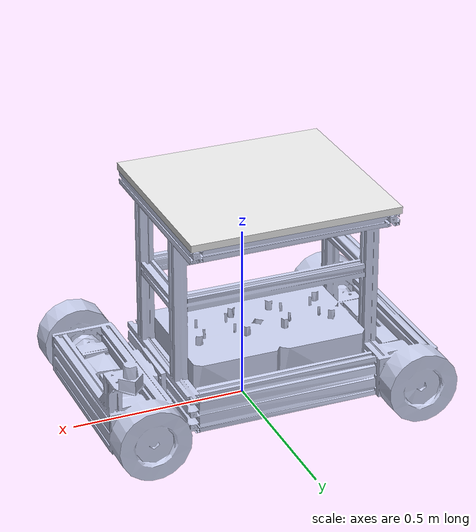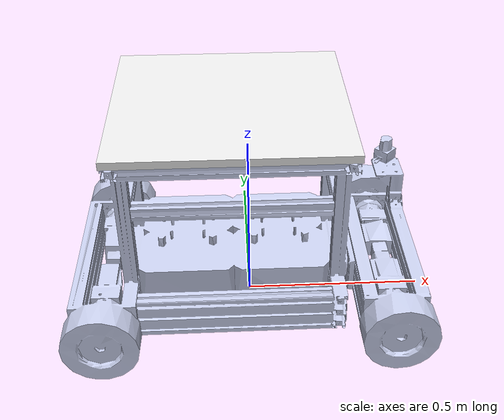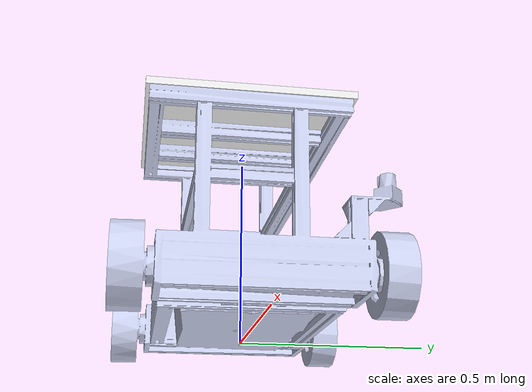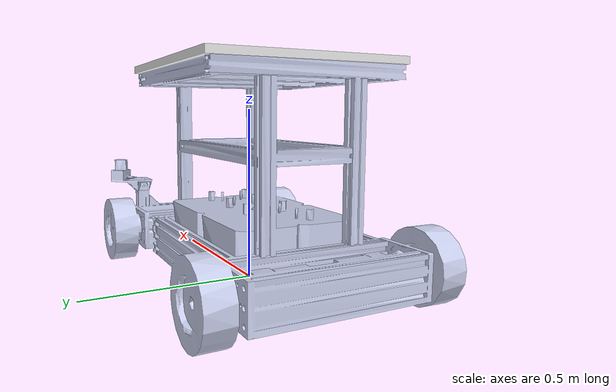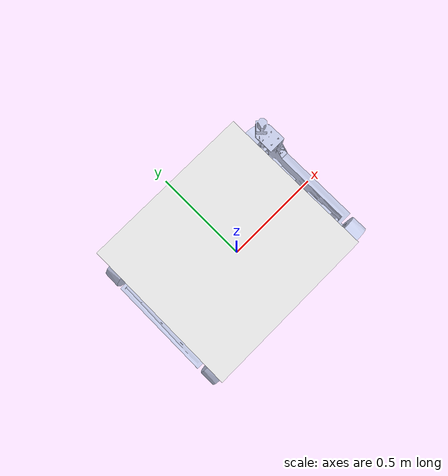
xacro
<robot name="base">

    <!-- Definition of base_footprint -> base_link -->

    <link name="base_footprint">
        <inertial>
            <origin xyz="0.0 0.0 0.0" rpy="0.0 0.0 0.0"/>
            <mass value="1E-4"/>
            <inertia ixx="1E-4" ixy="0.0" ixz="0.0" iyy="1E-4" iyz="0.0" izz="1E-4"/>
        </inertial>
        <visual>
            <origin rpy="0 0 0" xyz="0 0 0"/>
            <geometry>
                <box size="0.01 0.01 0.01"/>
            </geometry>
            <material name="White"/>
        </visual>
        <collision>
            <origin rpy="0 0 0" xyz="0 0 0"/>
            <geometry>
                <box size="0.01 0.01 0.01"/>
            </geometry>
        </collision>
    </link>

    <!-- JOINT to define base_footprint -->
    <joint name="base_footprint_joint" type="fixed">
        <origin xyz="0.25525 0.225 0.1616" rpy="0 0 0" />
        <parent link="base_footprint" />
        <child link="base_link" />
    </joint>

    <link name="base_link">
        <inertial>
        <origin
            xyz="-0.257082749974343 -0.227847593519202 0.0535404411050965"
            rpy="0 0 0" />
        <mass
            value="70.0210745907357" />
        <inertia
            ixx="9.06122735721955"
            ixy="0.0933988942518672"
            ixz="0.665662584048376"
            iyy="12.5350462868938"
            iyz="0.00262520723302998"
            izz="7.44839974564544" />
        </inertial>
        <visual>
        <origin
            xyz="0 0 0"
            rpy="0 0 0" />
        <geometry>
            <mesh
            filename="package://iai_donbot_sandbox_description/meshes/iai_boxy_base_2/base.stl" />
        </geometry>
        <material
            name="">
            <color
            rgba="0.792156862745098 0.819607843137255 0.933333333333333 1" />
        </material>
        </visual>
        <collision>
        <origin
            xyz="0 0 0"
            rpy="0 0 0" />
        <geometry>
            <mesh filename="package://iai_donbot_sandbox_description/meshes/iai_boxy_base_2/base_lowres.stl" />
        </geometry>
        </collision>
    </link>
    <link name="laser_reference_front" />
    <joint
        name="laser_reference_front_joint"
        type="fixed">
        <origin
        xyz="0.1772 0.060215 0.149929"
        rpy="0.0 0.0 0.7853975" />
        <parent
        link="base_link" />
        <child
        link="laser_reference_front" />
        <axis
        xyz="0.0 0.0 0.0" />
    </joint>
    <link name="laser_reference_back" />
    <joint
        name="laser_reference_back_joint"
        type="fixed">
        <origin
        xyz="-0.69357 -0.506 0.1575"
        rpy="4.9333E-15 4.5082E-15 -2.3562" />
        <parent
        link="base_link" />
        <child
        link="laser_reference_back" />
        <axis
        xyz="-1 0 0" />
    </joint>

    <link name="plate">
        <visual>
            <origin rpy="0 0 0" xyz="0 0 0"/>
            <geometry>
            <box size="0.6 0.553 0.02"/>
            </geometry>
            <material name="White"/>
        </visual>
        <collision>
            <origin rpy="0 0 0" xyz="0 0 0"/>
            <geometry>
            <box size="0.6 0.553 0.02"/>
            </geometry>
        </collision>
    </link>

    <joint name="plate_joint" type="fixed">
        <origin xyz="-0.300 -0.230 0.460" rpy="0 0 0" />
        <parent link="base_link" />
        <child link="plate" />
    </joint>

</robot>
